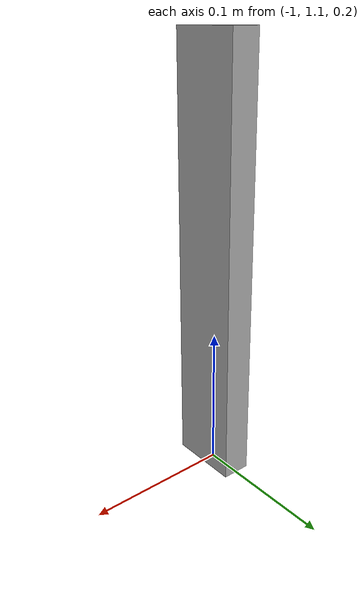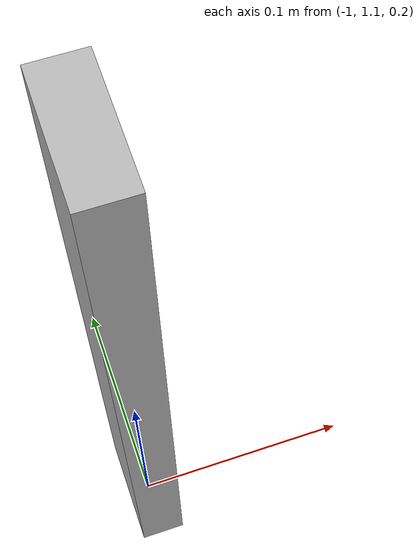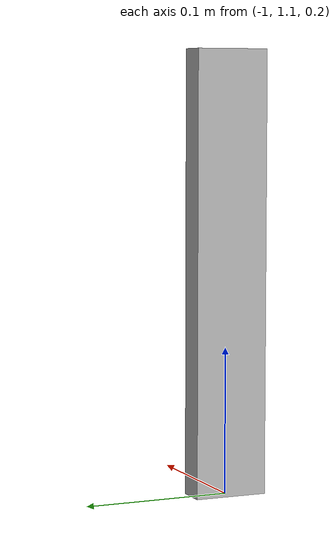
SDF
<?xml version='1.0'?>
<sdf version="1.5">
  <model name="traffic_bar_down">
    <static>true</static>
    <link name="traffic_bar_down">
        <pose frame=''>-1.0 1.1 0.35 0 1.57 1.57</pose>
        <collision name="collision">
          <pose frame=''>-1.0 1.1 0.35 0 1.57 1.57</pose>
          <geometry>
            <box>
              <size>0.3 0.02 0.05</size>
            </box>
         </geometry>
        </collision>
        <visual name="visual">
        <geometry>
          <box>
            <size>0.3 0.02 0.05</size>
          </box>
        </geometry>
        <material>
          <script>
            <uri>model://turtlebot3_autorace_2020/traffic_bar_down/materials/scripts</uri>
            <uri>model://turtlebot3_autorace_2020/traffic_bar_down/materials/textures</uri>
            <name>traffic_bar_down</name>
          </script>
        </material>
      </visual>
    </link>
    <static>1</static>
  </model>
</sdf>
